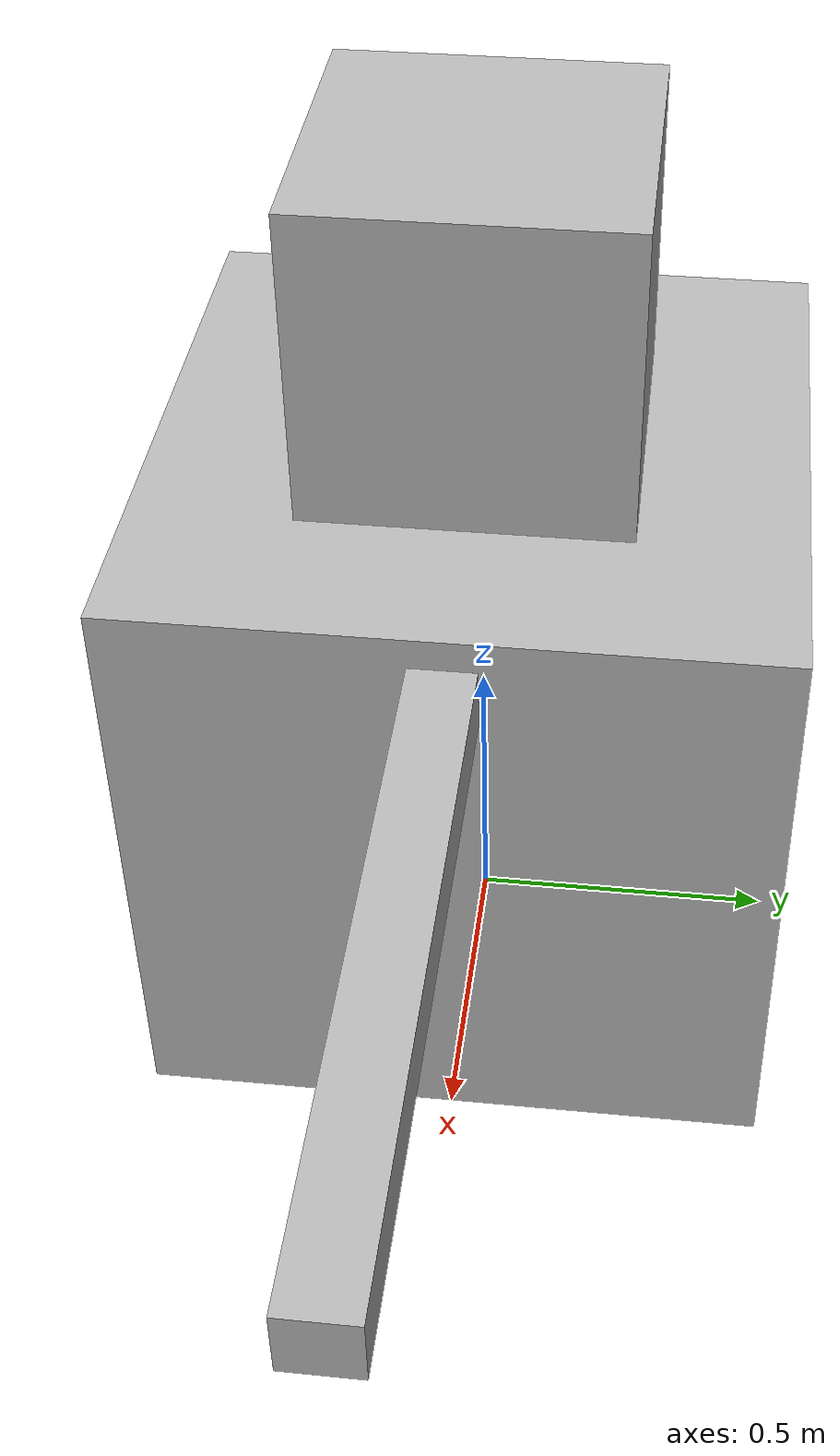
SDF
<?xml version='1.0'?>
<sdf version="1.7">
  <model name="stand">
    <plugin name='set_joint_position_plugin' filename='libJointControlDemoPlugin.so'>
      <joint>roll</joint>
      <control>
        <p>30</p>
        <i>3</i>
        <d>15</d>
      </control>
    </plugin>
    <frame name="base">
      <pose>0 0 0 0 0 0</pose>
    </frame>
    <link name="link">
      <pose relative_to="base">0 0 0.5 0 0 0</pose>
      <inertial>
        <mass>100.0</mass>

      </inertial>
      <collision name="collision">
        <geometry>
          <box>
            <size>1 1 1</size>
          </box>
        </geometry>
      </collision>
      <visual name="visual">
        <geometry>
          <box>
            <size>1 1 1</size>
          </box>
        </geometry>
      </visual>
    </link>
    <frame name="base_tip" attached_to="base">
      <pose relative_to="base">0 0 1 0 0 0</pose>
    </frame>
    <joint type="revolute" name="simple">
      <pose relative_to="base_tip">0 0 0 0 0 0</pose>
      <child>link2</child>
      <parent>link</parent>
      <axis>
        <xyz>0 0 1</xyz>
      </axis>
    </joint>

    <link name="link2">
      <pose relative_to="base_tip">0 0 0.25 0 0 0</pose>
      <collision name="collision">
        <geometry>
          <box>
            <size>0.5 0.5 0.5</size>
          </box>
        </geometry>
      </collision>
      <visual name="visual">
        <geometry>
          <box>
            <size>0.5 0.5 0.5</size>
          </box>
        </geometry>
        <material>
          <script>
            <uri>model://stand/materials/scripts</uri>
            <uri>model://stand/materials/textures</uri>
            <name>arrow</name>
          </script>
        </material>
      </visual>
    </link>

    <link name="link3">
      <inertial>
        <mass>1</mass>

      </inertial>
      <pose relative_to="base_tip">1 0 -0.1 0 0 0</pose>
      <collision name="collision">
        <geometry>
          <box>
            <size>1 0.1 0.1</size>
          </box>
        </geometry>
      </collision>
      <visual name="visual">
        <geometry>
          <box>
            <size>1 0.1 0.1</size>
          </box>
        </geometry>
      </visual>
      <sensor name="roll_imu" type="imu">
        <pose>0 0 0 0 0 1.575</pose>
        <always_on>1</always_on>
      </sensor>
    </link>
    <joint type="revolute" name="roll">
      <pose relative_to="base_tip">0.5 0 -0.1 0 0 0</pose>
      <child>link3</child>
      <parent>link</parent>

      <axis>
        <xyz>1 0 0</xyz>

        <use_parent_model_frame>1</use_parent_model_frame>
        <limit>
          <lower>-3.14159265</lower>
          <upper>3.14159265</upper>
          <effort>10</effort>
          <velocity>-1</velocity>
        </limit>
      </axis>
    </joint>
  </model>

</sdf>
